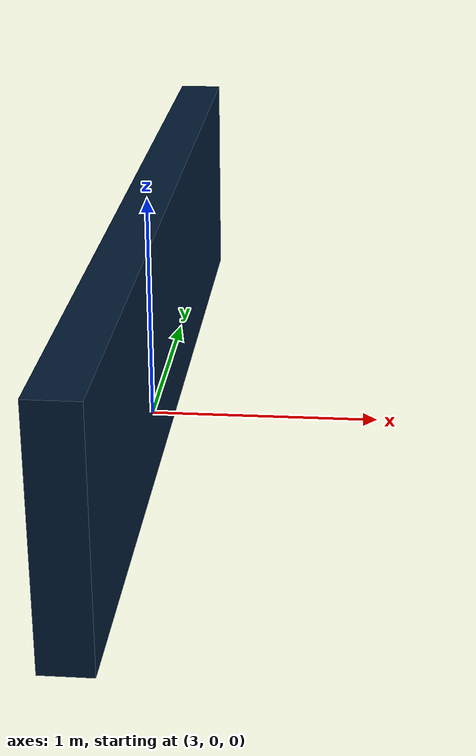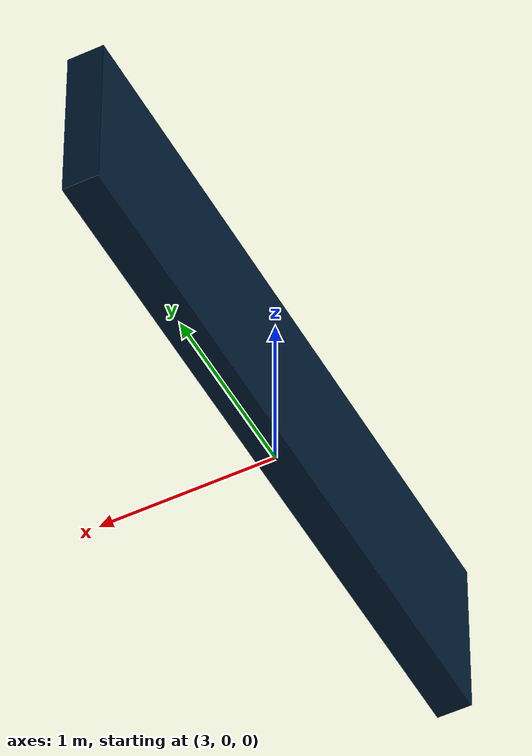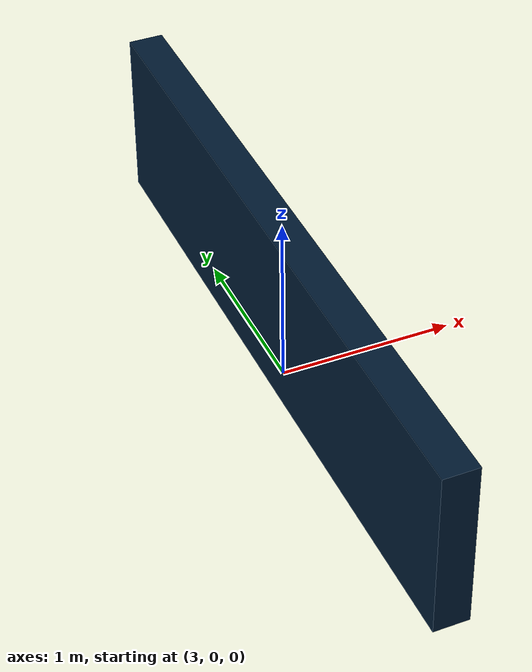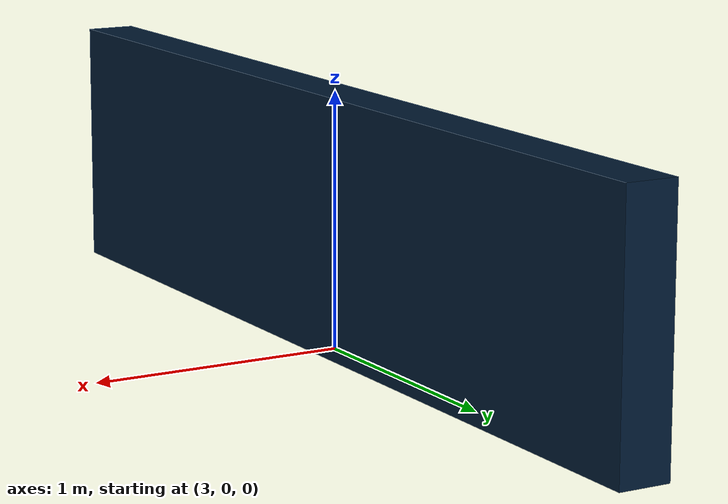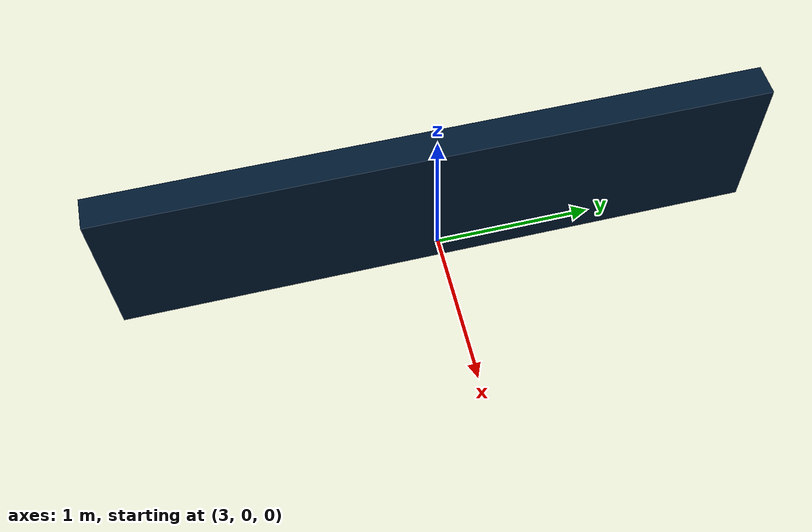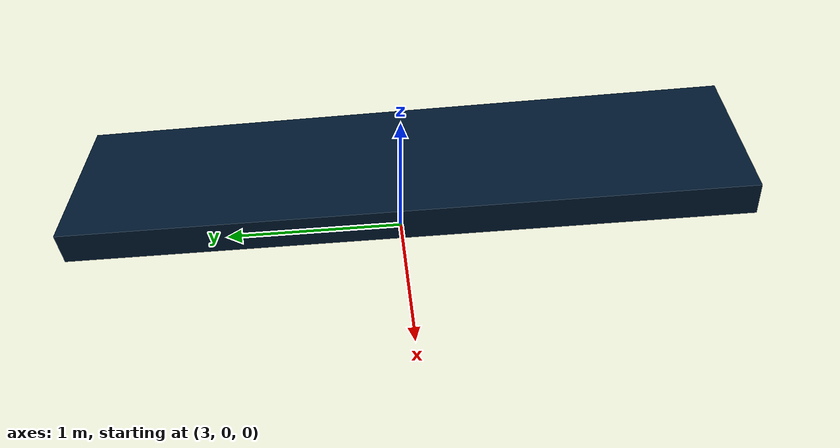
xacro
<?xml version="1.0"?>
<robot xmlns:xacro="http://ros.org" name="world_obstacles">

  <!-- Define a virtual world link as the origin -->
  <link name="world"/>

  <!-- Static Link for Wall 1 -->
  <link name="wall1_link">
    <visual>
      <origin xyz="0 0 0" rpy="0 0 0"/>
      <geometry>
        <!-- Matching size from wall.sdf (0.2 4 1) -->
        <box size="0.2 4.0 1.0"/>
      </geometry>
      <material name="dark_blue">
        <color rgba="0.0 0.1 0.2 1.0"/>
      </material>
    </visual>
    <collision>
      <origin xyz="0 0 0" rpy="0 0 0"/>
      <geometry>
        <box size="0.2 4.0 1.0"/>
      </geometry>
    </collision>
  </link>

  <!-- Joint calculating cumulative positions: -->
  <!-- Obstacles model pose (0 0 0.5) + wall1 pose (3 0 0) = (3 0 0.5) -->
  <joint name="world_to_wall1_joint" type="fixed">
    <parent link="world"/>
    <child link="wall1_link"/>
    <origin xyz="3.0 0.0 0.5" rpy="0 0 0"/>
  </joint>

</robot>
